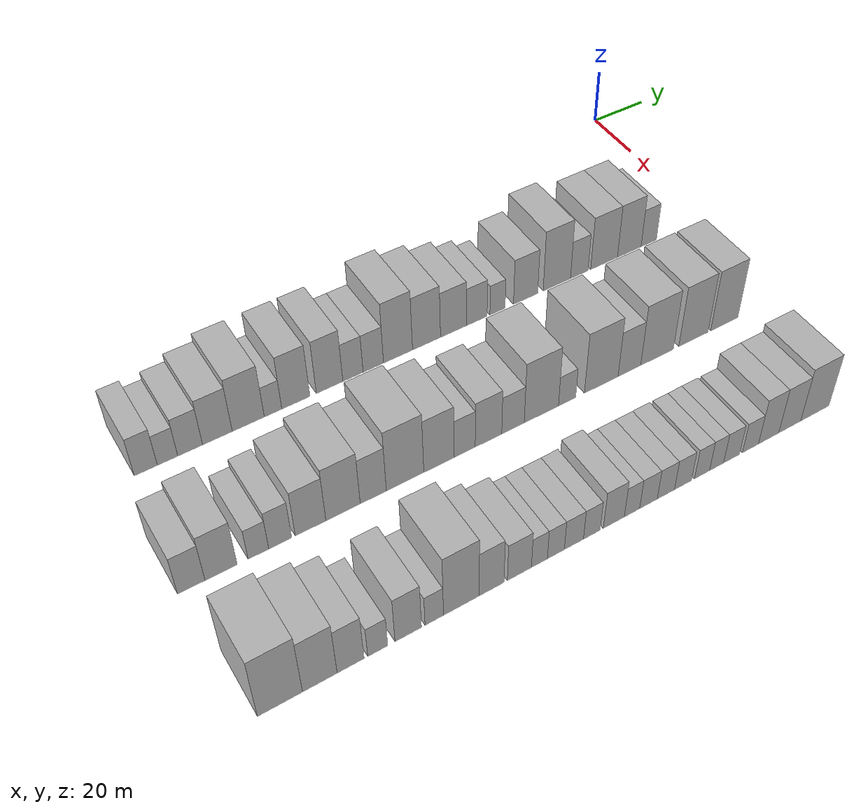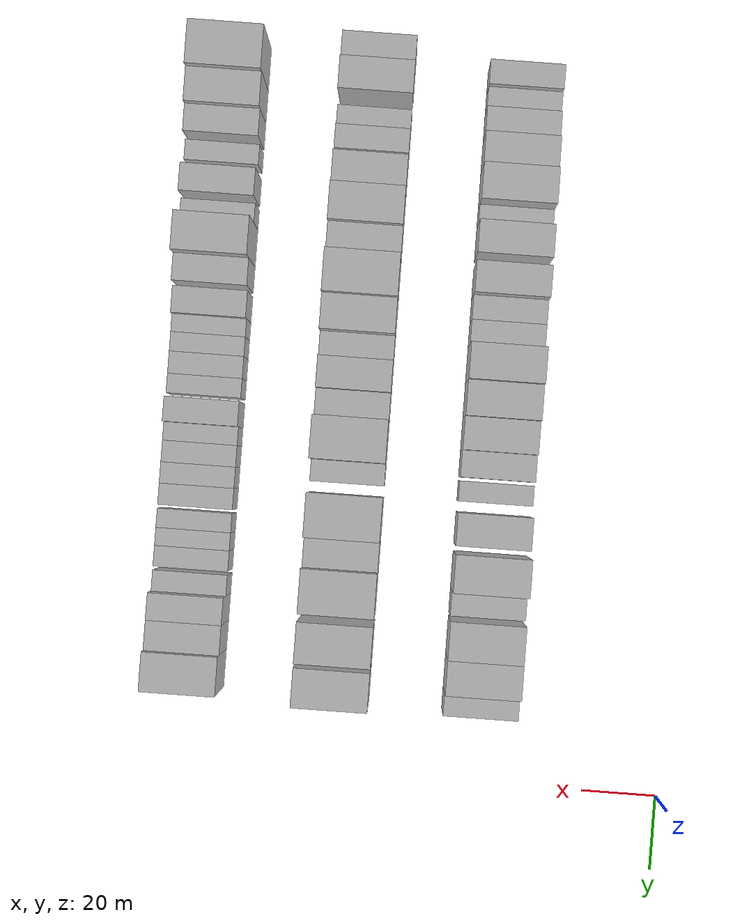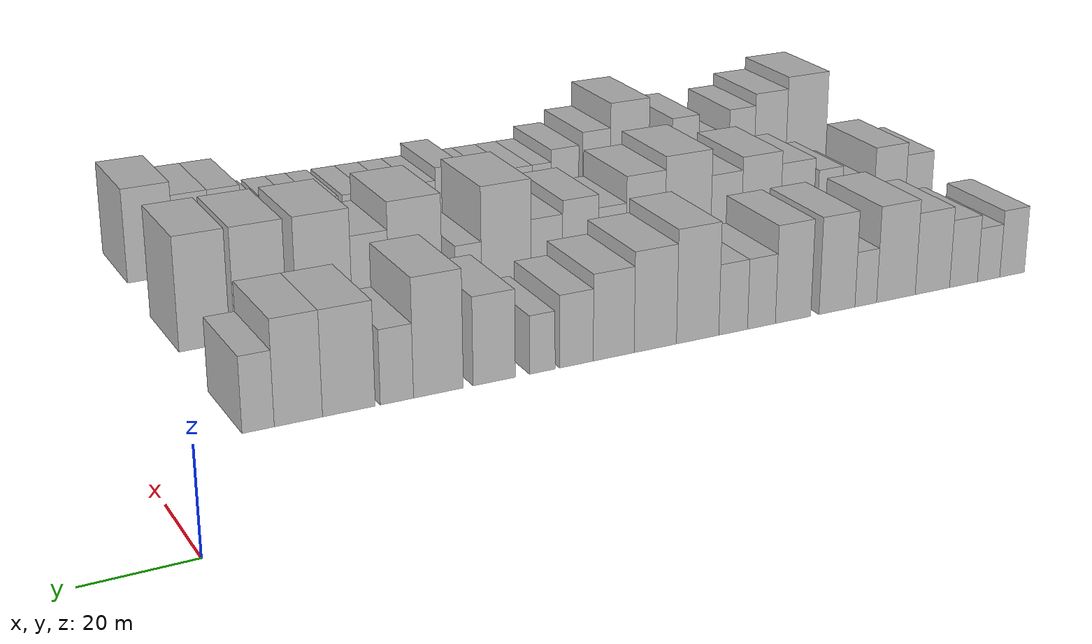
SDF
<sdf version="1.6">
 <world name="default">
  <model name="building_22">
   <static>1</static>
   <pose>50.0000 -191.3809 0 0.000000 0.000000 0.000000</pose>
   <link name="link">
    <pose>0 0 7.50 0 0 0</pose>
    <collision name="collision"><geometry><box><size>20.0000 6.5743 15.0000</size></box></geometry></collision>
    <visual name="visual">
     <cast_shadows>0</cast_shadows>
     <geometry><box><size>20.0000 6.5743 15.0000</size></box></geometry>
     <material>
      <script>
       <uri>model://HANNAS_wall/materials/scripts</uri>
       <uri>model://HANNAS_wall/materials/textures</uri>
       <name>vrc/HANNAS_wall</name>
      </script>
     </material>
    </visual>
   </link>
  </model>
  <model name="building_23">
   <static>1</static>
   <pose>50.0000 -185.1483 0 0.000000 0.000000 0.000000</pose>
   <link name="link">
    <pose>0 0 6.00 0 0 0</pose>
    <collision name="collision"><geometry><box><size>20.0000 5.8909 12.0000</size></box></geometry></collision>
    <visual name="visual">
     <cast_shadows>0</cast_shadows>
     <geometry><box><size>20.0000 5.8909 12.0000</size></box></geometry>
     <material>
      <script>
       <uri>model://HANNAS_wall/materials/scripts</uri>
       <uri>model://HANNAS_wall/materials/textures</uri>
       <name>vrc/HANNAS_wall</name>
      </script>
     </material>
    </visual>
   </link>
  </model>
  <model name="building_24">
   <static>1</static>
   <pose>50.0000 -178.5799 0 0.000000 0.000000 0.000000</pose>
   <link name="link">
    <pose>0 0 7.50 0 0 0</pose>
    <collision name="collision"><geometry><box><size>20.0000 7.2459 15.0000</size></box></geometry></collision>
    <visual name="visual">
     <cast_shadows>0</cast_shadows>
     <geometry><box><size>20.0000 7.2459 15.0000</size></box></geometry>
     <material>
      <script>
       <uri>model://HANNAS_wall/materials/scripts</uri>
       <uri>model://HANNAS_wall/materials/textures</uri>
       <name>vrc/HANNAS_wall</name>
      </script>
     </material>
    </visual>
   </link>
  </model>
  <model name="building_25">
   <static>1</static>
   <pose>50.0000 -170.5473 0 0.000000 0.000000 0.000000</pose>
   <link name="link">
    <pose>0 0 9.00 0 0 0</pose>
    <collision name="collision"><geometry><box><size>20.0000 8.8192 18.0000</size></box></geometry></collision>
    <visual name="visual">
     <cast_shadows>0</cast_shadows>
     <geometry><box><size>20.0000 8.8192 18.0000</size></box></geometry>
     <material>
      <script>
       <uri>model://HANNAS_wall/materials/scripts</uri>
       <uri>model://HANNAS_wall/materials/textures</uri>
       <name>vrc/HANNAS_wall</name>
      </script>
     </material>
    </visual>
   </link>
  </model>
  <model name="building_26">
   <static>1</static>
   <pose>50.0000 -161.2789 0 0.000000 0.000000 0.000000</pose>
   <link name="link">
    <pose>0 0 10.50 0 0 0</pose>
    <collision name="collision"><geometry><box><size>20.0000 9.7175 21.0000</size></box></geometry></collision>
    <visual name="visual">
     <cast_shadows>0</cast_shadows>
     <geometry><box><size>20.0000 9.7175 21.0000</size></box></geometry>
     <material>
      <script>
       <uri>model://HANNAS_wall/materials/scripts</uri>
       <uri>model://HANNAS_wall/materials/textures</uri>
       <name>vrc/HANNAS_wall</name>
      </script>
     </material>
    </visual>
   </link>
  </model>
  <model name="building_27">
   <static>1</static>
   <pose>50.0000 -153.7344 0 0.000000 0.000000 0.000000</pose>
   <link name="link">
    <pose>0 0 6.00 0 0 0</pose>
    <collision name="collision"><geometry><box><size>20.0000 5.3715 12.0000</size></box></geometry></collision>
    <visual name="visual">
     <cast_shadows>0</cast_shadows>
     <geometry><box><size>20.0000 5.3715 12.0000</size></box></geometry>
     <material>
      <script>
       <uri>model://HANNAS_wall/materials/scripts</uri>
       <uri>model://HANNAS_wall/materials/textures</uri>
       <name>vrc/HANNAS_wall</name>
      </script>
     </material>
    </visual>
   </link>
  </model>
  <model name="building_28">
   <static>1</static>
   <pose>50.0000 -146.6572 0 0.000000 0.000000 0.000000</pose>
   <link name="link">
    <pose>0 0 10.50 0 0 0</pose>
    <collision name="collision"><geometry><box><size>20.0000 8.7830 21.0000</size></box></geometry></collision>
    <visual name="visual">
     <cast_shadows>0</cast_shadows>
     <geometry><box><size>20.0000 8.7830 21.0000</size></box></geometry>
     <material>
      <script>
       <uri>model://HANNAS_wall/materials/scripts</uri>
       <uri>model://HANNAS_wall/materials/textures</uri>
       <name>vrc/HANNAS_wall</name>
      </script>
     </material>
    </visual>
   </link>
  </model>
  <model name="building_29">
   <static>1</static>
   <pose>50.0000 -136.0316 0 0.000000 0.000000 0.000000</pose>
   <link name="link">
    <pose>0 0 10.50 0 0 0</pose>
    <collision name="collision"><geometry><box><size>20.0000 8.4683 21.0000</size></box></geometry></collision>
    <visual name="visual">
     <cast_shadows>0</cast_shadows>
     <geometry><box><size>20.0000 8.4683 21.0000</size></box></geometry>
     <material>
      <script>
       <uri>model://HANNAS_wall/materials/scripts</uri>
       <uri>model://HANNAS_wall/materials/textures</uri>
       <name>vrc/HANNAS_wall</name>
      </script>
     </material>
    </visual>
   </link>
  </model>
  <model name="building_30">
   <static>1</static>
   <pose>50.0000 -128.5220 0 0.000000 0.000000 0.000000</pose>
   <link name="link">
    <pose>0 0 7.50 0 0 0</pose>
    <collision name="collision"><geometry><box><size>20.0000 6.5510 15.0000</size></box></geometry></collision>
    <visual name="visual">
     <cast_shadows>0</cast_shadows>
     <geometry><box><size>20.0000 6.5510 15.0000</size></box></geometry>
     <material>
      <script>
       <uri>model://HANNAS_wall/materials/scripts</uri>
       <uri>model://HANNAS_wall/materials/textures</uri>
       <name>vrc/HANNAS_wall</name>
      </script>
     </material>
    </visual>
   </link>
  </model>
  <model name="building_31">
   <static>1</static>
   <pose>50.0000 -121.9034 0 0.000000 0.000000 0.000000</pose>
   <link name="link">
    <pose>0 0 7.50 0 0 0</pose>
    <collision name="collision"><geometry><box><size>20.0000 6.6861 15.0000</size></box></geometry></collision>
    <visual name="visual">
     <cast_shadows>0</cast_shadows>
     <geometry><box><size>20.0000 6.6861 15.0000</size></box></geometry>
     <material>
      <script>
       <uri>model://HANNAS_wall/materials/scripts</uri>
       <uri>model://HANNAS_wall/materials/textures</uri>
       <name>vrc/HANNAS_wall</name>
      </script>
     </material>
    </visual>
   </link>
  </model>
  <model name="building_32">
   <static>1</static>
   <pose>50.0000 -113.7323 0 0.000000 0.000000 0.000000</pose>
   <link name="link">
    <pose>0 0 12.00 0 0 0</pose>
    <collision name="collision"><geometry><box><size>20.0000 9.6560 24.0000</size></box></geometry></collision>
    <visual name="visual">
     <cast_shadows>0</cast_shadows>
     <geometry><box><size>20.0000 9.6560 24.0000</size></box></geometry>
     <material>
      <script>
       <uri>model://HANNAS_wall/materials/scripts</uri>
       <uri>model://HANNAS_wall/materials/textures</uri>
       <name>vrc/HANNAS_wall</name>
      </script>
     </material>
    </visual>
   </link>
  </model>
  <model name="building_33">
   <static>1</static>
   <pose>50.0000 -104.1576 0 0.000000 0.000000 0.000000</pose>
   <link name="link">
    <pose>0 0 10.50 0 0 0</pose>
    <collision name="collision"><geometry><box><size>20.0000 9.4935 21.0000</size></box></geometry></collision>
    <visual name="visual">
     <cast_shadows>0</cast_shadows>
     <geometry><box><size>20.0000 9.4935 21.0000</size></box></geometry>
     <material>
      <script>
       <uri>model://HANNAS_wall/materials/scripts</uri>
       <uri>model://HANNAS_wall/materials/textures</uri>
       <name>vrc/HANNAS_wall</name>
      </script>
     </material>
    </visual>
   </link>
  </model>
  <model name="building_34">
   <static>1</static>
   <pose>50.0000 -94.9285 0 0.000000 0.000000 0.000000</pose>
   <link name="link">
    <pose>0 0 9.00 0 0 0</pose>
    <collision name="collision"><geometry><box><size>20.0000 8.9646 18.0000</size></box></geometry></collision>
    <visual name="visual">
     <cast_shadows>0</cast_shadows>
     <geometry><box><size>20.0000 8.9646 18.0000</size></box></geometry>
     <material>
      <script>
       <uri>model://HANNAS_wall/materials/scripts</uri>
       <uri>model://HANNAS_wall/materials/textures</uri>
       <name>vrc/HANNAS_wall</name>
      </script>
     </material>
    </visual>
   </link>
  </model>
  <model name="building_35">
   <static>1</static>
   <pose>50.0000 -86.8343 0 0.000000 0.000000 0.000000</pose>
   <link name="link">
    <pose>0 0 7.50 0 0 0</pose>
    <collision name="collision"><geometry><box><size>20.0000 7.2239 15.0000</size></box></geometry></collision>
    <visual name="visual">
     <cast_shadows>0</cast_shadows>
     <geometry><box><size>20.0000 7.2239 15.0000</size></box></geometry>
     <material>
      <script>
       <uri>model://HANNAS_wall/materials/scripts</uri>
       <uri>model://HANNAS_wall/materials/textures</uri>
       <name>vrc/HANNAS_wall</name>
      </script>
     </material>
    </visual>
   </link>
  </model>
  <model name="building_36">
   <static>1</static>
   <pose>50.0000 -79.5153 0 0.000000 0.000000 0.000000</pose>
   <link name="link">
    <pose>0 0 6.00 0 0 0</pose>
    <collision name="collision"><geometry><box><size>20.0000 5.4139 12.0000</size></box></geometry></collision>
    <visual name="visual">
     <cast_shadows>0</cast_shadows>
     <geometry><box><size>20.0000 5.4139 12.0000</size></box></geometry>
     <material>
      <script>
       <uri>model://HANNAS_wall/materials/scripts</uri>
       <uri>model://HANNAS_wall/materials/textures</uri>
       <name>vrc/HANNAS_wall</name>
      </script>
     </material>
    </visual>
   </link>
  </model>
  <model name="building_37">
   <static>1</static>
   <pose>50.0000 -69.4251 0 0.000000 0.000000 0.000000</pose>
   <link name="link">
    <pose>0 0 9.00 0 0 0</pose>
    <collision name="collision"><geometry><box><size>20.0000 8.7666 18.0000</size></box></geometry></collision>
    <visual name="visual">
     <cast_shadows>0</cast_shadows>
     <geometry><box><size>20.0000 8.7666 18.0000</size></box></geometry>
     <material>
      <script>
       <uri>model://HANNAS_wall/materials/scripts</uri>
       <uri>model://HANNAS_wall/materials/textures</uri>
       <name>vrc/HANNAS_wall</name>
      </script>
     </material>
    </visual>
   </link>
  </model>
  <model name="building_38">
   <static>1</static>
   <pose>50.0000 -57.9924 0 0.000000 0.000000 0.000000</pose>
   <link name="link">
    <pose>0 0 12.00 0 0 0</pose>
    <collision name="collision"><geometry><box><size>20.0000 10.0988 24.0000</size></box></geometry></collision>
    <visual name="visual">
     <cast_shadows>0</cast_shadows>
     <geometry><box><size>20.0000 10.0988 24.0000</size></box></geometry>
     <material>
      <script>
       <uri>model://HANNAS_wall/materials/scripts</uri>
       <uri>model://HANNAS_wall/materials/textures</uri>
       <name>vrc/HANNAS_wall</name>
      </script>
     </material>
    </visual>
   </link>
  </model>
  <model name="building_39">
   <static>1</static>
   <pose>50.0000 -49.6434 0 0.000000 0.000000 0.000000</pose>
   <link name="link">
    <pose>0 0 7.50 0 0 0</pose>
    <collision name="collision"><geometry><box><size>20.0000 6.5993 15.0000</size></box></geometry></collision>
    <visual name="visual">
     <cast_shadows>0</cast_shadows>
     <geometry><box><size>20.0000 6.5993 15.0000</size></box></geometry>
     <material>
      <script>
       <uri>model://HANNAS_wall/materials/scripts</uri>
       <uri>model://HANNAS_wall/materials/textures</uri>
       <name>vrc/HANNAS_wall</name>
      </script>
     </material>
    </visual>
   </link>
  </model>
  <model name="building_40">
   <static>1</static>
   <pose>50.0000 -40.2139 0 0.000000 0.000000 0.000000</pose>
   <link name="link">
    <pose>0 0 10.50 0 0 0</pose>
    <collision name="collision"><geometry><box><size>20.0000 10.2598 21.0000</size></box></geometry></collision>
    <visual name="visual">
     <cast_shadows>0</cast_shadows>
     <geometry><box><size>20.0000 10.2598 21.0000</size></box></geometry>
     <material>
      <script>
       <uri>model://HANNAS_wall/materials/scripts</uri>
       <uri>model://HANNAS_wall/materials/textures</uri>
       <name>vrc/HANNAS_wall</name>
      </script>
     </material>
    </visual>
   </link>
  </model>
  <model name="building_41">
   <static>1</static>
   <pose>50.0000 -30.4918 0 0.000000 0.000000 0.000000</pose>
   <link name="link">
    <pose>0 0 10.50 0 0 0</pose>
    <collision name="collision"><geometry><box><size>20.0000 9.1844 21.0000</size></box></geometry></collision>
    <visual name="visual">
     <cast_shadows>0</cast_shadows>
     <geometry><box><size>20.0000 9.1844 21.0000</size></box></geometry>
     <material>
      <script>
       <uri>model://HANNAS_wall/materials/scripts</uri>
       <uri>model://HANNAS_wall/materials/textures</uri>
       <name>vrc/HANNAS_wall</name>
      </script>
     </material>
    </visual>
   </link>
  </model>
  <model name="building_42">
   <static>1</static>
   <pose>50.0000 -22.8760 0 0.000000 0.000000 0.000000</pose>
   <link name="link">
    <pose>0 0 7.50 0 0 0</pose>
    <collision name="collision"><geometry><box><size>20.0000 6.0470 15.0000</size></box></geometry></collision>
    <visual name="visual">
     <cast_shadows>0</cast_shadows>
     <geometry><box><size>20.0000 6.0470 15.0000</size></box></geometry>
     <material>
      <script>
       <uri>model://HANNAS_wall/materials/scripts</uri>
       <uri>model://HANNAS_wall/materials/textures</uri>
       <name>vrc/HANNAS_wall</name>
      </script>
     </material>
    </visual>
   </link>
  </model>
  <model name="building_102">
   <static>1</static>
   <pose>90.0000 -195.8029 0 0.000000 0.000000 0.000000</pose>
   <link name="link">
    <pose>0 0 7.50 0 0 0</pose>
    <collision name="collision"><geometry><box><size>20.0000 7.3744 15.0000</size></box></geometry></collision>
    <visual name="visual">
     <cast_shadows>0</cast_shadows>
     <geometry><box><size>20.0000 7.3744 15.0000</size></box></geometry>
     <material>
      <script>
       <uri>model://HANNAS_wall/materials/scripts</uri>
       <uri>model://HANNAS_wall/materials/textures</uri>
       <name>vrc/HANNAS_wall</name>
      </script>
     </material>
    </visual>
   </link>
  </model>
  <model name="building_103">
   <static>1</static>
   <pose>90.0000 -187.7217 0 0.000000 0.000000 0.000000</pose>
   <link name="link">
    <pose>0 0 9.00 0 0 0</pose>
    <collision name="collision"><geometry><box><size>20.0000 8.7880 18.0000</size></box></geometry></collision>
    <visual name="visual">
     <cast_shadows>0</cast_shadows>
     <geometry><box><size>20.0000 8.7880 18.0000</size></box></geometry>
     <material>
      <script>
       <uri>model://HANNAS_wall/materials/scripts</uri>
       <uri>model://HANNAS_wall/materials/textures</uri>
       <name>vrc/HANNAS_wall</name>
      </script>
     </material>
    </visual>
   </link>
  </model>
  <model name="building_104">
   <static>1</static>
   <pose>90.0000 -177.4430 0 0.000000 0.000000 0.000000</pose>
   <link name="link">
    <pose>0 0 6.00 0 0 0</pose>
    <collision name="collision"><geometry><box><size>20.0000 5.7694 12.0000</size></box></geometry></collision>
    <visual name="visual">
     <cast_shadows>0</cast_shadows>
     <geometry><box><size>20.0000 5.7694 12.0000</size></box></geometry>
     <material>
      <script>
       <uri>model://HANNAS_wall/materials/scripts</uri>
       <uri>model://HANNAS_wall/materials/textures</uri>
       <name>vrc/HANNAS_wall</name>
      </script>
     </material>
    </visual>
   </link>
  </model>
  <model name="building_105">
   <static>1</static>
   <pose>90.0000 -171.3105 0 0.000000 0.000000 0.000000</pose>
   <link name="link">
    <pose>0 0 7.50 0 0 0</pose>
    <collision name="collision"><geometry><box><size>20.0000 6.4957 15.0000</size></box></geometry></collision>
    <visual name="visual">
     <cast_shadows>0</cast_shadows>
     <geometry><box><size>20.0000 6.4957 15.0000</size></box></geometry>
     <material>
      <script>
       <uri>model://HANNAS_wall/materials/scripts</uri>
       <uri>model://HANNAS_wall/materials/textures</uri>
       <name>vrc/HANNAS_wall</name>
      </script>
     </material>
    </visual>
   </link>
  </model>
  <model name="building_106">
   <static>1</static>
   <pose>90.0000 -162.6457 0 0.000000 0.000000 0.000000</pose>
   <link name="link">
    <pose>0 0 9.00 0 0 0</pose>
    <collision name="collision"><geometry><box><size>20.0000 8.8340 18.0000</size></box></geometry></collision>
    <visual name="visual">
     <cast_shadows>0</cast_shadows>
     <geometry><box><size>20.0000 8.8340 18.0000</size></box></geometry>
     <material>
      <script>
       <uri>model://HANNAS_wall/materials/scripts</uri>
       <uri>model://HANNAS_wall/materials/textures</uri>
       <name>vrc/HANNAS_wall</name>
      </script>
     </material>
    </visual>
   </link>
  </model>
  <model name="building_107">
   <static>1</static>
   <pose>90.0000 -153.1678 0 0.000000 0.000000 0.000000</pose>
   <link name="link">
    <pose>0 0 10.50 0 0 0</pose>
    <collision name="collision"><geometry><box><size>20.0000 10.1218 21.0000</size></box></geometry></collision>
    <visual name="visual">
     <cast_shadows>0</cast_shadows>
     <geometry><box><size>20.0000 10.1218 21.0000</size></box></geometry>
     <material>
      <script>
       <uri>model://HANNAS_wall/materials/scripts</uri>
       <uri>model://HANNAS_wall/materials/textures</uri>
       <name>vrc/HANNAS_wall</name>
      </script>
     </material>
    </visual>
   </link>
  </model>
  <model name="building_108">
   <static>1</static>
   <pose>90.0000 -144.1938 0 0.000000 0.000000 0.000000</pose>
   <link name="link">
    <pose>0 0 9.00 0 0 0</pose>
    <collision name="collision"><geometry><box><size>20.0000 7.8263 18.0000</size></box></geometry></collision>
    <visual name="visual">
     <cast_shadows>0</cast_shadows>
     <geometry><box><size>20.0000 7.8263 18.0000</size></box></geometry>
     <material>
      <script>
       <uri>model://HANNAS_wall/materials/scripts</uri>
       <uri>model://HANNAS_wall/materials/textures</uri>
       <name>vrc/HANNAS_wall</name>
      </script>
     </material>
    </visual>
   </link>
  </model>
  <model name="building_109">
   <static>1</static>
   <pose>90.0000 -134.5442 0 0.000000 0.000000 0.000000</pose>
   <link name="link">
    <pose>0 0 12.00 0 0 0</pose>
    <collision name="collision"><geometry><box><size>20.0000 11.4729 24.0000</size></box></geometry></collision>
    <visual name="visual">
     <cast_shadows>0</cast_shadows>
     <geometry><box><size>20.0000 11.4729 24.0000</size></box></geometry>
     <material>
      <script>
       <uri>model://HANNAS_wall/materials/scripts</uri>
       <uri>model://HANNAS_wall/materials/textures</uri>
       <name>vrc/HANNAS_wall</name>
      </script>
     </material>
    </visual>
   </link>
  </model>
  <model name="building_110">
   <static>1</static>
   <pose>90.0000 -124.0422 0 0.000000 0.000000 0.000000</pose>
   <link name="link">
    <pose>0 0 10.50 0 0 0</pose>
    <collision name="collision"><geometry><box><size>20.0000 9.5312 21.0000</size></box></geometry></collision>
    <visual name="visual">
     <cast_shadows>0</cast_shadows>
     <geometry><box><size>20.0000 9.5312 21.0000</size></box></geometry>
     <material>
      <script>
       <uri>model://HANNAS_wall/materials/scripts</uri>
       <uri>model://HANNAS_wall/materials/textures</uri>
       <name>vrc/HANNAS_wall</name>
      </script>
     </material>
    </visual>
   </link>
  </model>
  <model name="building_111">
   <static>1</static>
   <pose>90.0000 -115.9387 0 0.000000 0.000000 0.000000</pose>
   <link name="link">
    <pose>0 0 7.50 0 0 0</pose>
    <collision name="collision"><geometry><box><size>20.0000 6.6757 15.0000</size></box></geometry></collision>
    <visual name="visual">
     <cast_shadows>0</cast_shadows>
     <geometry><box><size>20.0000 6.6757 15.0000</size></box></geometry>
     <material>
      <script>
       <uri>model://HANNAS_wall/materials/scripts</uri>
       <uri>model://HANNAS_wall/materials/textures</uri>
       <name>vrc/HANNAS_wall</name>
      </script>
     </material>
    </visual>
   </link>
  </model>
  <model name="building_112">
   <static>1</static>
   <pose>90.0000 -108.3144 0 0.000000 0.000000 0.000000</pose>
   <link name="link">
    <pose>0 0 9.00 0 0 0</pose>
    <collision name="collision"><geometry><box><size>20.0000 8.5728 18.0000</size></box></geometry></collision>
    <visual name="visual">
     <cast_shadows>0</cast_shadows>
     <geometry><box><size>20.0000 8.5728 18.0000</size></box></geometry>
     <material>
      <script>
       <uri>model://HANNAS_wall/materials/scripts</uri>
       <uri>model://HANNAS_wall/materials/textures</uri>
       <name>vrc/HANNAS_wall</name>
      </script>
     </material>
    </visual>
   </link>
  </model>
  <model name="building_113">
   <static>1</static>
   <pose>90.0000 -100.3308 0 0.000000 0.000000 0.000000</pose>
   <link name="link">
    <pose>0 0 7.50 0 0 0</pose>
    <collision name="collision"><geometry><box><size>20.0000 7.3944 15.0000</size></box></geometry></collision>
    <visual name="visual">
     <cast_shadows>0</cast_shadows>
     <geometry><box><size>20.0000 7.3944 15.0000</size></box></geometry>
     <material>
      <script>
       <uri>model://HANNAS_wall/materials/scripts</uri>
       <uri>model://HANNAS_wall/materials/textures</uri>
       <name>vrc/HANNAS_wall</name>
      </script>
     </material>
    </visual>
   </link>
  </model>
  <model name="building_114">
   <static>1</static>
   <pose>90.0000 -90.8966 0 0.000000 0.000000 0.000000</pose>
   <link name="link">
    <pose>0 0 12.00 0 0 0</pose>
    <collision name="collision"><geometry><box><size>20.0000 11.4739 24.0000</size></box></geometry></collision>
    <visual name="visual">
     <cast_shadows>0</cast_shadows>
     <geometry><box><size>20.0000 11.4739 24.0000</size></box></geometry>
     <material>
      <script>
       <uri>model://HANNAS_wall/materials/scripts</uri>
       <uri>model://HANNAS_wall/materials/textures</uri>
       <name>vrc/HANNAS_wall</name>
      </script>
     </material>
    </visual>
   </link>
  </model>
  <model name="building_115">
   <static>1</static>
   <pose>90.0000 -82.2171 0 0.000000 0.000000 0.000000</pose>
   <link name="link">
    <pose>0 0 6.00 0 0 0</pose>
    <collision name="collision"><geometry><box><size>20.0000 5.8851 12.0000</size></box></geometry></collision>
    <visual name="visual">
     <cast_shadows>0</cast_shadows>
     <geometry><box><size>20.0000 5.8851 12.0000</size></box></geometry>
     <material>
      <script>
       <uri>model://HANNAS_wall/materials/scripts</uri>
       <uri>model://HANNAS_wall/materials/textures</uri>
       <name>vrc/HANNAS_wall</name>
      </script>
     </material>
    </visual>
   </link>
  </model>
  <model name="building_116">
   <static>1</static>
   <pose>90.0000 -70.3969 0 0.000000 0.000000 0.000000</pose>
   <link name="link">
    <pose>0 0 12.00 0 0 0</pose>
    <collision name="collision"><geometry><box><size>20.0000 11.7553 24.0000</size></box></geometry></collision>
    <visual name="visual">
     <cast_shadows>0</cast_shadows>
     <geometry><box><size>20.0000 11.7553 24.0000</size></box></geometry>
     <material>
      <script>
       <uri>model://HANNAS_wall/materials/scripts</uri>
       <uri>model://HANNAS_wall/materials/textures</uri>
       <name>vrc/HANNAS_wall</name>
      </script>
     </material>
    </visual>
   </link>
  </model>
  <model name="building_117">
   <static>1</static>
   <pose>90.0000 -60.4900 0 0.000000 0.000000 0.000000</pose>
   <link name="link">
    <pose>0 0 9.00 0 0 0</pose>
    <collision name="collision"><geometry><box><size>20.0000 8.0585 18.0000</size></box></geometry></collision>
    <visual name="visual">
     <cast_shadows>0</cast_shadows>
     <geometry><box><size>20.0000 8.0585 18.0000</size></box></geometry>
     <material>
      <script>
       <uri>model://HANNAS_wall/materials/scripts</uri>
       <uri>model://HANNAS_wall/materials/textures</uri>
       <name>vrc/HANNAS_wall</name>
      </script>
     </material>
    </visual>
   </link>
  </model>
  <model name="building_118">
   <static>1</static>
   <pose>90.0000 -50.5282 0 0.000000 0.000000 0.000000</pose>
   <link name="link">
    <pose>0 0 12.00 0 0 0</pose>
    <collision name="collision"><geometry><box><size>20.0000 11.8652 24.0000</size></box></geometry></collision>
    <visual name="visual">
     <cast_shadows>0</cast_shadows>
     <geometry><box><size>20.0000 11.8652 24.0000</size></box></geometry>
     <material>
      <script>
       <uri>model://HANNAS_wall/materials/scripts</uri>
       <uri>model://HANNAS_wall/materials/textures</uri>
       <name>vrc/HANNAS_wall</name>
      </script>
     </material>
    </visual>
   </link>
  </model>
  <model name="building_119">
   <static>1</static>
   <pose>90.0000 -37.1396 0 0.000000 0.000000 0.000000</pose>
   <link name="link">
    <pose>0 0 12.00 0 0 0</pose>
    <collision name="collision"><geometry><box><size>20.0000 10.9120 24.0000</size></box></geometry></collision>
    <visual name="visual">
     <cast_shadows>0</cast_shadows>
     <geometry><box><size>20.0000 10.9120 24.0000</size></box></geometry>
     <material>
      <script>
       <uri>model://HANNAS_wall/materials/scripts</uri>
       <uri>model://HANNAS_wall/materials/textures</uri>
       <name>vrc/HANNAS_wall</name>
      </script>
     </material>
    </visual>
   </link>
  </model>
  <model name="building_120">
   <static>1</static>
   <pose>90.0000 -25.5040 0 0.000000 0.000000 0.000000</pose>
   <link name="link">
    <pose>0 0 12.00 0 0 0</pose>
    <collision name="collision"><geometry><box><size>20.0000 10.3592 24.0000</size></box></geometry></collision>
    <visual name="visual">
     <cast_shadows>0</cast_shadows>
     <geometry><box><size>20.0000 10.3592 24.0000</size></box></geometry>
     <material>
      <script>
       <uri>model://HANNAS_wall/materials/scripts</uri>
       <uri>model://HANNAS_wall/materials/textures</uri>
       <name>vrc/HANNAS_wall</name>
      </script>
     </material>
    </visual>
   </link>
  </model>
  <model name="building_189">
   <static>1</static>
   <pose>130.0000 -191.1418 0 0.000000 0.000000 0.000000</pose>
   <link name="link">
    <pose>0 0 12.00 0 0 0</pose>
    <collision name="collision"><geometry><box><size>20.0000 11.5854 24.0000</size></box></geometry></collision>
    <visual name="visual">
     <cast_shadows>0</cast_shadows>
     <geometry><box><size>20.0000 11.5854 24.0000</size></box></geometry>
     <material>
      <script>
       <uri>model://HANNAS_wall/materials/scripts</uri>
       <uri>model://HANNAS_wall/materials/textures</uri>
       <name>vrc/HANNAS_wall</name>
      </script>
     </material>
    </visual>
   </link>
  </model>
  <model name="building_190">
   <static>1</static>
   <pose>130.0000 -180.7968 0 0.000000 0.000000 0.000000</pose>
   <link name="link">
    <pose>0 0 10.50 0 0 0</pose>
    <collision name="collision"><geometry><box><size>20.0000 9.1045 21.0000</size></box></geometry></collision>
    <visual name="visual">
     <cast_shadows>0</cast_shadows>
     <geometry><box><size>20.0000 9.1045 21.0000</size></box></geometry>
     <material>
      <script>
       <uri>model://HANNAS_wall/materials/scripts</uri>
       <uri>model://HANNAS_wall/materials/textures</uri>
       <name>vrc/HANNAS_wall</name>
      </script>
     </material>
    </visual>
   </link>
  </model>
  <model name="building_191">
   <static>1</static>
   <pose>130.0000 -172.6298 0 0.000000 0.000000 0.000000</pose>
   <link name="link">
    <pose>0 0 9.00 0 0 0</pose>
    <collision name="collision"><geometry><box><size>20.0000 7.2295 18.0000</size></box></geometry></collision>
    <visual name="visual">
     <cast_shadows>0</cast_shadows>
     <geometry><box><size>20.0000 7.2295 18.0000</size></box></geometry>
     <material>
      <script>
       <uri>model://HANNAS_wall/materials/scripts</uri>
       <uri>model://HANNAS_wall/materials/textures</uri>
       <name>vrc/HANNAS_wall</name>
      </script>
     </material>
    </visual>
   </link>
  </model>
  <model name="building_192">
   <static>1</static>
   <pose>130.0000 -165.2954 0 0.000000 0.000000 0.000000</pose>
   <link name="link">
    <pose>0 0 6.00 0 0 0</pose>
    <collision name="collision"><geometry><box><size>20.0000 5.4393 12.0000</size></box></geometry></collision>
    <visual name="visual">
     <cast_shadows>0</cast_shadows>
     <geometry><box><size>20.0000 5.4393 12.0000</size></box></geometry>
     <material>
      <script>
       <uri>model://HANNAS_wall/materials/scripts</uri>
       <uri>model://HANNAS_wall/materials/textures</uri>
       <name>vrc/HANNAS_wall</name>
      </script>
     </material>
    </visual>
   </link>
  </model>
  <model name="building_193">
   <static>1</static>
   <pose>130.0000 -156.8866 0 0.000000 0.000000 0.000000</pose>
   <link name="link">
    <pose>0 0 9.00 0 0 0</pose>
    <collision name="collision"><geometry><box><size>20.0000 7.3783 18.0000</size></box></geometry></collision>
    <visual name="visual">
     <cast_shadows>0</cast_shadows>
     <geometry><box><size>20.0000 7.3783 18.0000</size></box></geometry>
     <material>
      <script>
       <uri>model://HANNAS_wall/materials/scripts</uri>
       <uri>model://HANNAS_wall/materials/textures</uri>
       <name>vrc/HANNAS_wall</name>
      </script>
     </material>
    </visual>
   </link>
  </model>
  <model name="building_194">
   <static>1</static>
   <pose>130.0000 -149.5803 0 0.000000 0.000000 0.000000</pose>
   <link name="link">
    <pose>0 0 6.00 0 0 0</pose>
    <collision name="collision"><geometry><box><size>20.0000 5.2341 12.0000</size></box></geometry></collision>
    <visual name="visual">
     <cast_shadows>0</cast_shadows>
     <geometry><box><size>20.0000 5.2341 12.0000</size></box></geometry>
     <material>
      <script>
       <uri>model://HANNAS_wall/materials/scripts</uri>
       <uri>model://HANNAS_wall/materials/textures</uri>
       <name>vrc/HANNAS_wall</name>
      </script>
     </material>
    </visual>
   </link>
  </model>
  <model name="building_195">
   <static>1</static>
   <pose>130.0000 -141.8289 0 0.000000 0.000000 0.000000</pose>
   <link name="link">
    <pose>0 0 12.00 0 0 0</pose>
    <collision name="collision"><geometry><box><size>20.0000 10.2688 24.0000</size></box></geometry></collision>
    <visual name="visual">
     <cast_shadows>0</cast_shadows>
     <geometry><box><size>20.0000 10.2688 24.0000</size></box></geometry>
     <material>
      <script>
       <uri>model://HANNAS_wall/materials/scripts</uri>
       <uri>model://HANNAS_wall/materials/textures</uri>
       <name>vrc/HANNAS_wall</name>
      </script>
     </material>
    </visual>
   </link>
  </model>
  <model name="building_196">
   <static>1</static>
   <pose>130.0000 -133.0376 0 0.000000 0.000000 0.000000</pose>
   <link name="link">
    <pose>0 0 9.00 0 0 0</pose>
    <collision name="collision"><geometry><box><size>20.0000 7.3137 18.0000</size></box></geometry></collision>
    <visual name="visual">
     <cast_shadows>0</cast_shadows>
     <geometry><box><size>20.0000 7.3137 18.0000</size></box></geometry>
     <material>
      <script>
       <uri>model://HANNAS_wall/materials/scripts</uri>
       <uri>model://HANNAS_wall/materials/textures</uri>
       <name>vrc/HANNAS_wall</name>
      </script>
     </material>
    </visual>
   </link>
  </model>
  <model name="building_197">
   <static>1</static>
   <pose>130.0000 -124.7726 0 0.000000 0.000000 0.000000</pose>
   <link name="link">
    <pose>0 0 7.50 0 0 0</pose>
    <collision name="collision"><geometry><box><size>20.0000 7.2163 15.0000</size></box></geometry></collision>
    <visual name="visual">
     <cast_shadows>0</cast_shadows>
     <geometry><box><size>20.0000 7.2163 15.0000</size></box></geometry>
     <material>
      <script>
       <uri>model://HANNAS_wall/materials/scripts</uri>
       <uri>model://HANNAS_wall/materials/textures</uri>
       <name>vrc/HANNAS_wall</name>
      </script>
     </material>
    </visual>
   </link>
  </model>
  <model name="building_198">
   <static>1</static>
   <pose>130.0000 -118.7449 0 0.000000 0.000000 0.000000</pose>
   <link name="link">
    <pose>0 0 6.00 0 0 0</pose>
    <collision name="collision"><geometry><box><size>20.0000 4.8393 12.0000</size></box></geometry></collision>
    <visual name="visual">
     <cast_shadows>0</cast_shadows>
     <geometry><box><size>20.0000 4.8393 12.0000</size></box></geometry>
     <material>
      <script>
       <uri>model://HANNAS_wall/materials/scripts</uri>
       <uri>model://HANNAS_wall/materials/textures</uri>
       <name>vrc/HANNAS_wall</name>
      </script>
     </material>
    </visual>
   </link>
  </model>
  <model name="building_199">
   <static>1</static>
   <pose>130.0000 -113.7161 0 0.000000 0.000000 0.000000</pose>
   <link name="link">
    <pose>0 0 6.00 0 0 0</pose>
    <collision name="collision"><geometry><box><size>20.0000 5.2183 12.0000</size></box></geometry></collision>
    <visual name="visual">
     <cast_shadows>0</cast_shadows>
     <geometry><box><size>20.0000 5.2183 12.0000</size></box></geometry>
     <material>
      <script>
       <uri>model://HANNAS_wall/materials/scripts</uri>
       <uri>model://HANNAS_wall/materials/textures</uri>
       <name>vrc/HANNAS_wall</name>
      </script>
     </material>
    </visual>
   </link>
  </model>
  <model name="building_200">
   <static>1</static>
   <pose>130.0000 -108.1288 0 0.000000 0.000000 0.000000</pose>
   <link name="link">
    <pose>0 0 6.00 0 0 0</pose>
    <collision name="collision"><geometry><box><size>20.0000 5.9562 12.0000</size></box></geometry></collision>
    <visual name="visual">
     <cast_shadows>0</cast_shadows>
     <geometry><box><size>20.0000 5.9562 12.0000</size></box></geometry>
     <material>
      <script>
       <uri>model://HANNAS_wall/materials/scripts</uri>
       <uri>model://HANNAS_wall/materials/textures</uri>
       <name>vrc/HANNAS_wall</name>
      </script>
     </material>
    </visual>
   </link>
  </model>
  <model name="building_201">
   <static>1</static>
   <pose>130.0000 -102.5252 0 0.000000 0.000000 0.000000</pose>
   <link name="link">
    <pose>0 0 6.00 0 0 0</pose>
    <collision name="collision"><geometry><box><size>20.0000 5.2511 12.0000</size></box></geometry></collision>
    <visual name="visual">
     <cast_shadows>0</cast_shadows>
     <geometry><box><size>20.0000 5.2511 12.0000</size></box></geometry>
     <material>
      <script>
       <uri>model://HANNAS_wall/materials/scripts</uri>
       <uri>model://HANNAS_wall/materials/textures</uri>
       <name>vrc/HANNAS_wall</name>
      </script>
     </material>
    </visual>
   </link>
  </model>
  <model name="building_202">
   <static>1</static>
   <pose>130.0000 -95.5373 0 0.000000 0.000000 0.000000</pose>
   <link name="link">
    <pose>0 0 7.50 0 0 0</pose>
    <collision name="collision"><geometry><box><size>20.0000 6.7247 15.0000</size></box></geometry></collision>
    <visual name="visual">
     <cast_shadows>0</cast_shadows>
     <geometry><box><size>20.0000 6.7247 15.0000</size></box></geometry>
     <material>
      <script>
       <uri>model://HANNAS_wall/materials/scripts</uri>
       <uri>model://HANNAS_wall/materials/textures</uri>
       <name>vrc/HANNAS_wall</name>
      </script>
     </material>
    </visual>
   </link>
  </model>
  <model name="building_203">
   <static>1</static>
   <pose>130.0000 -89.6911 0 0.000000 0.000000 0.000000</pose>
   <link name="link">
    <pose>0 0 6.00 0 0 0</pose>
    <collision name="collision"><geometry><box><size>20.0000 4.9678 12.0000</size></box></geometry></collision>
    <visual name="visual">
     <cast_shadows>0</cast_shadows>
     <geometry><box><size>20.0000 4.9678 12.0000</size></box></geometry>
     <material>
      <script>
       <uri>model://HANNAS_wall/materials/scripts</uri>
       <uri>model://HANNAS_wall/materials/textures</uri>
       <name>vrc/HANNAS_wall</name>
      </script>
     </material>
    </visual>
   </link>
  </model>
  <model name="building_204">
   <static>1</static>
   <pose>130.0000 -84.3133 0 0.000000 0.000000 0.000000</pose>
   <link name="link">
    <pose>0 0 6.00 0 0 0</pose>
    <collision name="collision"><geometry><box><size>20.0000 5.7878 12.0000</size></box></geometry></collision>
    <visual name="visual">
     <cast_shadows>0</cast_shadows>
     <geometry><box><size>20.0000 5.7878 12.0000</size></box></geometry>
     <material>
      <script>
       <uri>model://HANNAS_wall/materials/scripts</uri>
       <uri>model://HANNAS_wall/materials/textures</uri>
       <name>vrc/HANNAS_wall</name>
      </script>
     </material>
    </visual>
   </link>
  </model>
  <model name="building_205">
   <static>1</static>
   <pose>130.0000 -78.5700 0 0.000000 0.000000 0.000000</pose>
   <link name="link">
    <pose>0 0 6.00 0 0 0</pose>
    <collision name="collision"><geometry><box><size>20.0000 5.6988 12.0000</size></box></geometry></collision>
    <visual name="visual">
     <cast_shadows>0</cast_shadows>
     <geometry><box><size>20.0000 5.6988 12.0000</size></box></geometry>
     <material>
      <script>
       <uri>model://HANNAS_wall/materials/scripts</uri>
       <uri>model://HANNAS_wall/materials/textures</uri>
       <name>vrc/HANNAS_wall</name>
      </script>
     </material>
    </visual>
   </link>
  </model>
  <model name="building_206">
   <static>1</static>
   <pose>130.0000 -72.8539 0 0.000000 0.000000 0.000000</pose>
   <link name="link">
    <pose>0 0 6.00 0 0 0</pose>
    <collision name="collision"><geometry><box><size>20.0000 5.7334 12.0000</size></box></geometry></collision>
    <visual name="visual">
     <cast_shadows>0</cast_shadows>
     <geometry><box><size>20.0000 5.7334 12.0000</size></box></geometry>
     <material>
      <script>
       <uri>model://HANNAS_wall/materials/scripts</uri>
       <uri>model://HANNAS_wall/materials/textures</uri>
       <name>vrc/HANNAS_wall</name>
      </script>
     </material>
    </visual>
   </link>
  </model>
  <model name="building_207">
   <static>1</static>
   <pose>130.0000 -66.4142 0 0.000000 0.000000 0.000000</pose>
   <link name="link">
    <pose>0 0 6.00 0 0 0</pose>
    <collision name="collision"><geometry><box><size>20.0000 5.1460 12.0000</size></box></geometry></collision>
    <visual name="visual">
     <cast_shadows>0</cast_shadows>
     <geometry><box><size>20.0000 5.1460 12.0000</size></box></geometry>
     <material>
      <script>
       <uri>model://HANNAS_wall/materials/scripts</uri>
       <uri>model://HANNAS_wall/materials/textures</uri>
       <name>vrc/HANNAS_wall</name>
      </script>
     </material>
    </visual>
   </link>
  </model>
  <model name="building_208">
   <static>1</static>
   <pose>130.0000 -61.4334 0 0.000000 0.000000 0.000000</pose>
   <link name="link">
    <pose>0 0 6.00 0 0 0</pose>
    <collision name="collision"><geometry><box><size>20.0000 4.8157 12.0000</size></box></geometry></collision>
    <visual name="visual">
     <cast_shadows>0</cast_shadows>
     <geometry><box><size>20.0000 4.8157 12.0000</size></box></geometry>
     <material>
      <script>
       <uri>model://HANNAS_wall/materials/scripts</uri>
       <uri>model://HANNAS_wall/materials/textures</uri>
       <name>vrc/HANNAS_wall</name>
      </script>
     </material>
    </visual>
   </link>
  </model>
  <model name="building_209">
   <static>1</static>
   <pose>130.0000 -56.2626 0 0.000000 0.000000 0.000000</pose>
   <link name="link">
    <pose>0 0 6.00 0 0 0</pose>
    <collision name="collision"><geometry><box><size>20.0000 5.5258 12.0000</size></box></geometry></collision>
    <visual name="visual">
     <cast_shadows>0</cast_shadows>
     <geometry><box><size>20.0000 5.5258 12.0000</size></box></geometry>
     <material>
      <script>
       <uri>model://HANNAS_wall/materials/scripts</uri>
       <uri>model://HANNAS_wall/materials/textures</uri>
       <name>vrc/HANNAS_wall</name>
      </script>
     </material>
    </visual>
   </link>
  </model>
  <model name="building_210">
   <static>1</static>
   <pose>130.0000 -49.6592 0 0.000000 0.000000 0.000000</pose>
   <link name="link">
    <pose>0 0 6.00 0 0 0</pose>
    <collision name="collision"><geometry><box><size>20.0000 5.6811 12.0000</size></box></geometry></collision>
    <visual name="visual">
     <cast_shadows>0</cast_shadows>
     <geometry><box><size>20.0000 5.6811 12.0000</size></box></geometry>
     <material>
      <script>
       <uri>model://HANNAS_wall/materials/scripts</uri>
       <uri>model://HANNAS_wall/materials/textures</uri>
       <name>vrc/HANNAS_wall</name>
      </script>
     </material>
    </visual>
   </link>
  </model>
  <model name="building_211">
   <static>1</static>
   <pose>130.0000 -43.1821 0 0.000000 0.000000 0.000000</pose>
   <link name="link">
    <pose>0 0 9.00 0 0 0</pose>
    <collision name="collision"><geometry><box><size>20.0000 7.2730 18.0000</size></box></geometry></collision>
    <visual name="visual">
     <cast_shadows>0</cast_shadows>
     <geometry><box><size>20.0000 7.2730 18.0000</size></box></geometry>
     <material>
      <script>
       <uri>model://HANNAS_wall/materials/scripts</uri>
       <uri>model://HANNAS_wall/materials/textures</uri>
       <name>vrc/HANNAS_wall</name>
      </script>
     </material>
    </visual>
   </link>
  </model>
  <model name="building_212">
   <static>1</static>
   <pose>130.0000 -35.5667 0 0.000000 0.000000 0.000000</pose>
   <link name="link">
    <pose>0 0 9.00 0 0 0</pose>
    <collision name="collision"><geometry><box><size>20.0000 7.9580 18.0000</size></box></geometry></collision>
    <visual name="visual">
     <cast_shadows>0</cast_shadows>
     <geometry><box><size>20.0000 7.9580 18.0000</size></box></geometry>
     <material>
      <script>
       <uri>model://HANNAS_wall/materials/scripts</uri>
       <uri>model://HANNAS_wall/materials/textures</uri>
       <name>vrc/HANNAS_wall</name>
      </script>
     </material>
    </visual>
   </link>
  </model>
  <model name="building_213">
   <static>1</static>
   <pose>130.0000 -26.3678 0 0.000000 0.000000 0.000000</pose>
   <link name="link">
    <pose>0 0 10.50 0 0 0</pose>
    <collision name="collision"><geometry><box><size>20.0000 10.4398 21.0000</size></box></geometry></collision>
    <visual name="visual">
     <cast_shadows>0</cast_shadows>
     <geometry><box><size>20.0000 10.4398 21.0000</size></box></geometry>
     <material>
      <script>
       <uri>model://HANNAS_wall/materials/scripts</uri>
       <uri>model://HANNAS_wall/materials/textures</uri>
       <name>vrc/HANNAS_wall</name>
      </script>
     </material>
    </visual>
   </link>
  </model>
 </world>
</sdf>
